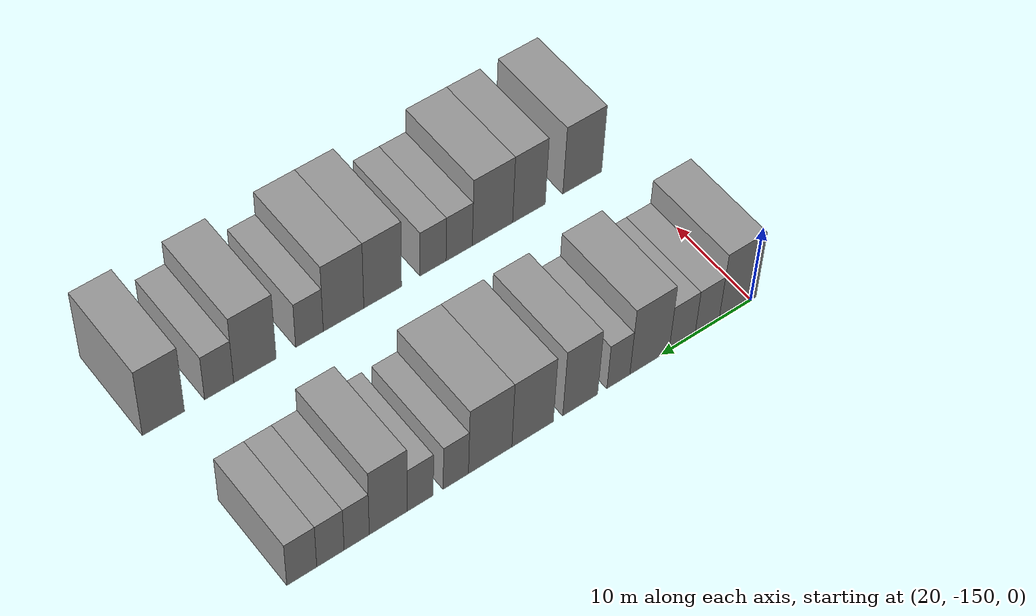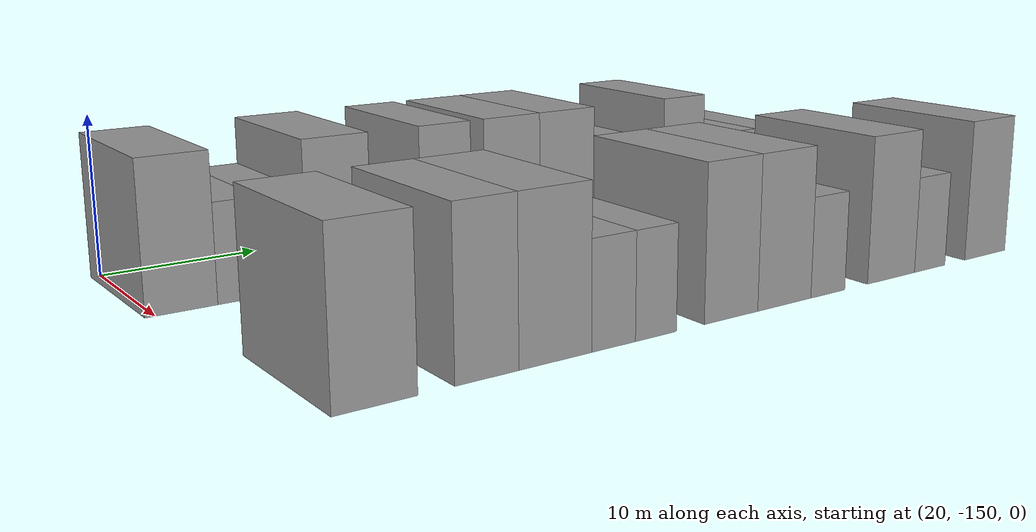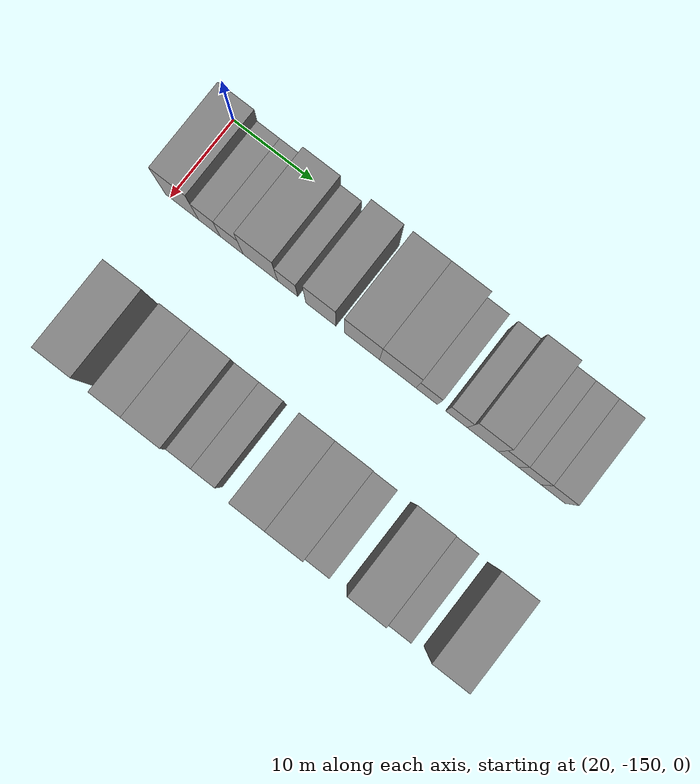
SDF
<sdf version="1.6">
 <world name="default">
  <model name="building_13">
   <static>1</static>
   <pose>25.0000 -148.4807 0 0.000000 0.000000 0.000000</pose>
   <link name="link">
    <pose>0 0 4.50 0 0 0</pose>
    <collision name="collision"><geometry><box><size>10.0000 4.1957 9.0000</size></box></geometry></collision>
    <visual name="visual">
     <cast_shadows>0</cast_shadows>
     <geometry><box><size>10.0000 4.1957 9.0000</size></box></geometry>
     <material>
      <script>
       <uri>model://grey_wall/materials/scripts</uri>
       <uri>model://grey_wall/materials/textures</uri>
       <name>vrc/grey_wall</name>
      </script>
     </material>
    </visual>
   </link>
  </model>
  <model name="building_14">
   <static>1</static>
   <pose>25.0000 -145.0377 0 0.000000 0.000000 0.000000</pose>
   <link name="link">
    <pose>0 0 3.00 0 0 0</pose>
    <collision name="collision"><geometry><box><size>10.0000 2.6903 6.0000</size></box></geometry></collision>
    <visual name="visual">
     <cast_shadows>0</cast_shadows>
     <geometry><box><size>10.0000 2.6903 6.0000</size></box></geometry>
     <material>
      <script>
       <uri>model://grey_wall/materials/scripts</uri>
       <uri>model://grey_wall/materials/textures</uri>
       <name>vrc/grey_wall</name>
      </script>
     </material>
    </visual>
   </link>
  </model>
  <model name="building_15">
   <static>1</static>
   <pose>25.0000 -142.2592 0 0.000000 0.000000 0.000000</pose>
   <link name="link">
    <pose>0 0 3.00 0 0 0</pose>
    <collision name="collision"><geometry><box><size>10.0000 2.8667 6.0000</size></box></geometry></collision>
    <visual name="visual">
     <cast_shadows>0</cast_shadows>
     <geometry><box><size>10.0000 2.8667 6.0000</size></box></geometry>
     <material>
      <script>
       <uri>model://grey_wall/materials/scripts</uri>
       <uri>model://grey_wall/materials/textures</uri>
       <name>vrc/grey_wall</name>
      </script>
     </material>
    </visual>
   </link>
  </model>
  <model name="building_16">
   <static>1</static>
   <pose>25.0000 -138.6716 0 0.000000 0.000000 0.000000</pose>
   <link name="link">
    <pose>0 0 4.50 0 0 0</pose>
    <collision name="collision"><geometry><box><size>10.0000 4.3085 9.0000</size></box></geometry></collision>
    <visual name="visual">
     <cast_shadows>0</cast_shadows>
     <geometry><box><size>10.0000 4.3085 9.0000</size></box></geometry>
     <material>
      <script>
       <uri>model://grey_wall/materials/scripts</uri>
       <uri>model://grey_wall/materials/textures</uri>
       <name>vrc/grey_wall</name>
      </script>
     </material>
    </visual>
   </link>
  </model>
  <model name="building_17">
   <static>1</static>
   <pose>25.0000 -135.2732 0 0.000000 0.000000 0.000000</pose>
   <link name="link">
    <pose>0 0 3.00 0 0 0</pose>
    <collision name="collision"><geometry><box><size>10.0000 2.4883 6.0000</size></box></geometry></collision>
    <visual name="visual">
     <cast_shadows>0</cast_shadows>
     <geometry><box><size>10.0000 2.4883 6.0000</size></box></geometry>
     <material>
      <script>
       <uri>model://grey_wall/materials/scripts</uri>
       <uri>model://grey_wall/materials/textures</uri>
       <name>vrc/grey_wall</name>
      </script>
     </material>
    </visual>
   </link>
  </model>
  <model name="building_18">
   <static>1</static>
   <pose>25.0000 -131.1658 0 0.000000 0.000000 0.000000</pose>
   <link name="link">
    <pose>0 0 4.50 0 0 0</pose>
    <collision name="collision"><geometry><box><size>10.0000 3.7266 9.0000</size></box></geometry></collision>
    <visual name="visual">
     <cast_shadows>0</cast_shadows>
     <geometry><box><size>10.0000 3.7266 9.0000</size></box></geometry>
     <material>
      <script>
       <uri>model://grey_wall/materials/scripts</uri>
       <uri>model://grey_wall/materials/textures</uri>
       <name>vrc/grey_wall</name>
      </script>
     </material>
    </visual>
   </link>
  </model>
  <model name="building_19">
   <static>1</static>
   <pose>25.0000 -126.1264 0 0.000000 0.000000 0.000000</pose>
   <link name="link">
    <pose>0 0 4.50 0 0 0</pose>
    <collision name="collision"><geometry><box><size>10.0000 4.3522 9.0000</size></box></geometry></collision>
    <visual name="visual">
     <cast_shadows>0</cast_shadows>
     <geometry><box><size>10.0000 4.3522 9.0000</size></box></geometry>
     <material>
      <script>
       <uri>model://grey_wall/materials/scripts</uri>
       <uri>model://grey_wall/materials/textures</uri>
       <name>vrc/grey_wall</name>
      </script>
     </material>
    </visual>
   </link>
  </model>
  <model name="building_20">
   <static>1</static>
   <pose>25.0000 -121.7045 0 0.000000 0.000000 0.000000</pose>
   <link name="link">
    <pose>0 0 4.50 0 0 0</pose>
    <collision name="collision"><geometry><box><size>10.0000 4.4916 9.0000</size></box></geometry></collision>
    <visual name="visual">
     <cast_shadows>0</cast_shadows>
     <geometry><box><size>10.0000 4.4916 9.0000</size></box></geometry>
     <material>
      <script>
       <uri>model://grey_wall/materials/scripts</uri>
       <uri>model://grey_wall/materials/textures</uri>
       <name>vrc/grey_wall</name>
      </script>
     </material>
    </visual>
   </link>
  </model>
  <model name="building_21">
   <static>1</static>
   <pose>25.0000 -118.1646 0 0.000000 0.000000 0.000000</pose>
   <link name="link">
    <pose>0 0 3.00 0 0 0</pose>
    <collision name="collision"><geometry><box><size>10.0000 2.5880 6.0000</size></box></geometry></collision>
    <visual name="visual">
     <cast_shadows>0</cast_shadows>
     <geometry><box><size>10.0000 2.5880 6.0000</size></box></geometry>
     <material>
      <script>
       <uri>model://grey_wall/materials/scripts</uri>
       <uri>model://grey_wall/materials/textures</uri>
       <name>vrc/grey_wall</name>
      </script>
     </material>
    </visual>
   </link>
  </model>
  <model name="building_22">
   <static>1</static>
   <pose>25.0000 -114.5606 0 0.000000 0.000000 0.000000</pose>
   <link name="link">
    <pose>0 0 3.00 0 0 0</pose>
    <collision name="collision"><geometry><box><size>10.0000 2.6201 6.0000</size></box></geometry></collision>
    <visual name="visual">
     <cast_shadows>0</cast_shadows>
     <geometry><box><size>10.0000 2.6201 6.0000</size></box></geometry>
     <material>
      <script>
       <uri>model://grey_wall/materials/scripts</uri>
       <uri>model://grey_wall/materials/textures</uri>
       <name>vrc/grey_wall</name>
      </script>
     </material>
    </visual>
   </link>
  </model>
  <model name="building_23">
   <static>1</static>
   <pose>25.0000 -111.3578 0 0.000000 0.000000 0.000000</pose>
   <link name="link">
    <pose>0 0 4.50 0 0 0</pose>
    <collision name="collision"><geometry><box><size>10.0000 3.7856 9.0000</size></box></geometry></collision>
    <visual name="visual">
     <cast_shadows>0</cast_shadows>
     <geometry><box><size>10.0000 3.7856 9.0000</size></box></geometry>
     <material>
      <script>
       <uri>model://grey_wall/materials/scripts</uri>
       <uri>model://grey_wall/materials/textures</uri>
       <name>vrc/grey_wall</name>
      </script>
     </material>
    </visual>
   </link>
  </model>
  <model name="building_24">
   <static>1</static>
   <pose>25.0000 -108.2224 0 0.000000 0.000000 0.000000</pose>
   <link name="link">
    <pose>0 0 3.00 0 0 0</pose>
    <collision name="collision"><geometry><box><size>10.0000 2.4851 6.0000</size></box></geometry></collision>
    <visual name="visual">
     <cast_shadows>0</cast_shadows>
     <geometry><box><size>10.0000 2.4851 6.0000</size></box></geometry>
     <material>
      <script>
       <uri>model://grey_wall/materials/scripts</uri>
       <uri>model://grey_wall/materials/textures</uri>
       <name>vrc/grey_wall</name>
      </script>
     </material>
    </visual>
   </link>
  </model>
  <model name="building_25">
   <static>1</static>
   <pose>25.0000 -105.6417 0 0.000000 0.000000 0.000000</pose>
   <link name="link">
    <pose>0 0 3.00 0 0 0</pose>
    <collision name="collision"><geometry><box><size>10.0000 2.6763 6.0000</size></box></geometry></collision>
    <visual name="visual">
     <cast_shadows>0</cast_shadows>
     <geometry><box><size>10.0000 2.6763 6.0000</size></box></geometry>
     <material>
      <script>
       <uri>model://grey_wall/materials/scripts</uri>
       <uri>model://grey_wall/materials/textures</uri>
       <name>vrc/grey_wall</name>
      </script>
     </material>
    </visual>
   </link>
  </model>
  <model name="building_26">
   <static>1</static>
   <pose>25.0000 -102.8518 0 0.000000 0.000000 0.000000</pose>
   <link name="link">
    <pose>0 0 3.00 0 0 0</pose>
    <collision name="collision"><geometry><box><size>10.0000 2.9035 6.0000</size></box></geometry></collision>
    <visual name="visual">
     <cast_shadows>0</cast_shadows>
     <geometry><box><size>10.0000 2.9035 6.0000</size></box></geometry>
     <material>
      <script>
       <uri>model://grey_wall/materials/scripts</uri>
       <uri>model://grey_wall/materials/textures</uri>
       <name>vrc/grey_wall</name>
      </script>
     </material>
    </visual>
   </link>
  </model>
  <model name="building_114">
   <static>1</static>
   <pose>44.0000 -146.3483 0 0.000000 0.000000 0.000000</pose>
   <link name="link">
    <pose>0 0 4.50 0 0 0</pose>
    <collision name="collision"><geometry><box><size>10.0000 4.4305 9.0000</size></box></geometry></collision>
    <visual name="visual">
     <cast_shadows>0</cast_shadows>
     <geometry><box><size>10.0000 4.4305 9.0000</size></box></geometry>
     <material>
      <script>
       <uri>model://grey_wall/materials/scripts</uri>
       <uri>model://grey_wall/materials/textures</uri>
       <name>vrc/grey_wall</name>
      </script>
     </material>
    </visual>
   </link>
  </model>
  <model name="building_115">
   <static>1</static>
   <pose>44.0000 -140.3017 0 0.000000 0.000000 0.000000</pose>
   <link name="link">
    <pose>0 0 4.50 0 0 0</pose>
    <collision name="collision"><geometry><box><size>10.0000 3.6626 9.0000</size></box></geometry></collision>
    <visual name="visual">
     <cast_shadows>0</cast_shadows>
     <geometry><box><size>10.0000 3.6626 9.0000</size></box></geometry>
     <material>
      <script>
       <uri>model://grey_wall/materials/scripts</uri>
       <uri>model://grey_wall/materials/textures</uri>
       <name>vrc/grey_wall</name>
      </script>
     </material>
    </visual>
   </link>
  </model>
  <model name="building_116">
   <static>1</static>
   <pose>44.0000 -136.2374 0 0.000000 0.000000 0.000000</pose>
   <link name="link">
    <pose>0 0 4.50 0 0 0</pose>
    <collision name="collision"><geometry><box><size>10.0000 4.4661 9.0000</size></box></geometry></collision>
    <visual name="visual">
     <cast_shadows>0</cast_shadows>
     <geometry><box><size>10.0000 4.4661 9.0000</size></box></geometry>
     <material>
      <script>
       <uri>model://grey_wall/materials/scripts</uri>
       <uri>model://grey_wall/materials/textures</uri>
       <name>vrc/grey_wall</name>
      </script>
     </material>
    </visual>
   </link>
  </model>
  <model name="building_117">
   <static>1</static>
   <pose>44.0000 -132.5682 0 0.000000 0.000000 0.000000</pose>
   <link name="link">
    <pose>0 0 3.00 0 0 0</pose>
    <collision name="collision"><geometry><box><size>10.0000 2.8722 6.0000</size></box></geometry></collision>
    <visual name="visual">
     <cast_shadows>0</cast_shadows>
     <geometry><box><size>10.0000 2.8722 6.0000</size></box></geometry>
     <material>
      <script>
       <uri>model://grey_wall/materials/scripts</uri>
       <uri>model://grey_wall/materials/textures</uri>
       <name>vrc/grey_wall</name>
      </script>
     </material>
    </visual>
   </link>
  </model>
  <model name="building_118">
   <static>1</static>
   <pose>44.0000 -129.7249 0 0.000000 0.000000 0.000000</pose>
   <link name="link">
    <pose>0 0 3.00 0 0 0</pose>
    <collision name="collision"><geometry><box><size>10.0000 2.8144 6.0000</size></box></geometry></collision>
    <visual name="visual">
     <cast_shadows>0</cast_shadows>
     <geometry><box><size>10.0000 2.8144 6.0000</size></box></geometry>
     <material>
      <script>
       <uri>model://grey_wall/materials/scripts</uri>
       <uri>model://grey_wall/materials/textures</uri>
       <name>vrc/grey_wall</name>
      </script>
     </material>
    </visual>
   </link>
  </model>
  <model name="building_119">
   <static>1</static>
   <pose>44.0000 -124.3106 0 0.000000 0.000000 0.000000</pose>
   <link name="link">
    <pose>0 0 4.50 0 0 0</pose>
    <collision name="collision"><geometry><box><size>10.0000 4.0141 9.0000</size></box></geometry></collision>
    <visual name="visual">
     <cast_shadows>0</cast_shadows>
     <geometry><box><size>10.0000 4.0141 9.0000</size></box></geometry>
     <material>
      <script>
       <uri>model://grey_wall/materials/scripts</uri>
       <uri>model://grey_wall/materials/textures</uri>
       <name>vrc/grey_wall</name>
      </script>
     </material>
    </visual>
   </link>
  </model>
  <model name="building_120">
   <static>1</static>
   <pose>44.0000 -120.1739 0 0.000000 0.000000 0.000000</pose>
   <link name="link">
    <pose>0 0 4.50 0 0 0</pose>
    <collision name="collision"><geometry><box><size>10.0000 4.2594 9.0000</size></box></geometry></collision>
    <visual name="visual">
     <cast_shadows>0</cast_shadows>
     <geometry><box><size>10.0000 4.2594 9.0000</size></box></geometry>
     <material>
      <script>
       <uri>model://grey_wall/materials/scripts</uri>
       <uri>model://grey_wall/materials/textures</uri>
       <name>vrc/grey_wall</name>
      </script>
     </material>
    </visual>
   </link>
  </model>
  <model name="building_121">
   <static>1</static>
   <pose>44.0000 -116.6084 0 0.000000 0.000000 0.000000</pose>
   <link name="link">
    <pose>0 0 3.00 0 0 0</pose>
    <collision name="collision"><geometry><box><size>10.0000 2.8717 6.0000</size></box></geometry></collision>
    <visual name="visual">
     <cast_shadows>0</cast_shadows>
     <geometry><box><size>10.0000 2.8717 6.0000</size></box></geometry>
     <material>
      <script>
       <uri>model://grey_wall/materials/scripts</uri>
       <uri>model://grey_wall/materials/textures</uri>
       <name>vrc/grey_wall</name>
      </script>
     </material>
    </visual>
   </link>
  </model>
  <model name="building_122">
   <static>1</static>
   <pose>44.0000 -111.0098 0 0.000000 0.000000 0.000000</pose>
   <link name="link">
    <pose>0 0 4.50 0 0 0</pose>
    <collision name="collision"><geometry><box><size>10.0000 4.3254 9.0000</size></box></geometry></collision>
    <visual name="visual">
     <cast_shadows>0</cast_shadows>
     <geometry><box><size>10.0000 4.3254 9.0000</size></box></geometry>
     <material>
      <script>
       <uri>model://grey_wall/materials/scripts</uri>
       <uri>model://grey_wall/materials/textures</uri>
       <name>vrc/grey_wall</name>
      </script>
     </material>
    </visual>
   </link>
  </model>
  <model name="building_123">
   <static>1</static>
   <pose>44.0000 -107.3760 0 0.000000 0.000000 0.000000</pose>
   <link name="link">
    <pose>0 0 3.00 0 0 0</pose>
    <collision name="collision"><geometry><box><size>10.0000 2.9424 6.0000</size></box></geometry></collision>
    <visual name="visual">
     <cast_shadows>0</cast_shadows>
     <geometry><box><size>10.0000 2.9424 6.0000</size></box></geometry>
     <material>
      <script>
       <uri>model://grey_wall/materials/scripts</uri>
       <uri>model://grey_wall/materials/textures</uri>
       <name>vrc/grey_wall</name>
      </script>
     </material>
    </visual>
   </link>
  </model>
  <model name="building_124">
   <static>1</static>
   <pose>44.0000 -101.8197 0 0.000000 0.000000 0.000000</pose>
   <link name="link">
    <pose>0 0 4.50 0 0 0</pose>
    <collision name="collision"><geometry><box><size>10.0000 4.1701 9.0000</size></box></geometry></collision>
    <visual name="visual">
     <cast_shadows>0</cast_shadows>
     <geometry><box><size>10.0000 4.1701 9.0000</size></box></geometry>
     <material>
      <script>
       <uri>model://grey_wall/materials/scripts</uri>
       <uri>model://grey_wall/materials/textures</uri>
       <name>vrc/grey_wall</name>
      </script>
     </material>
    </visual>
   </link>
  </model>
 </world>
</sdf>
